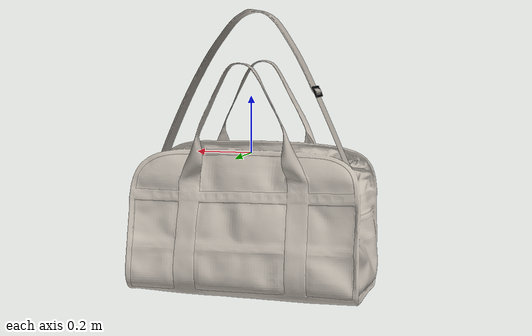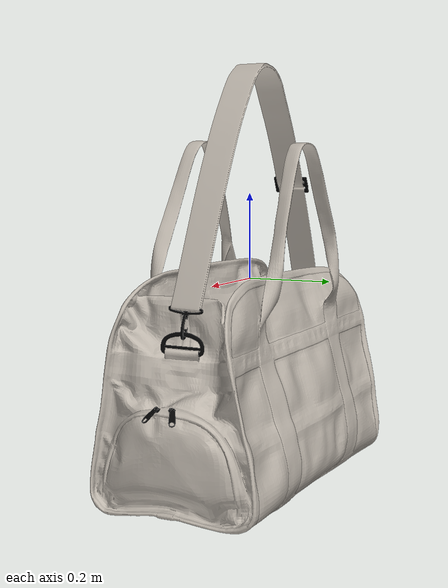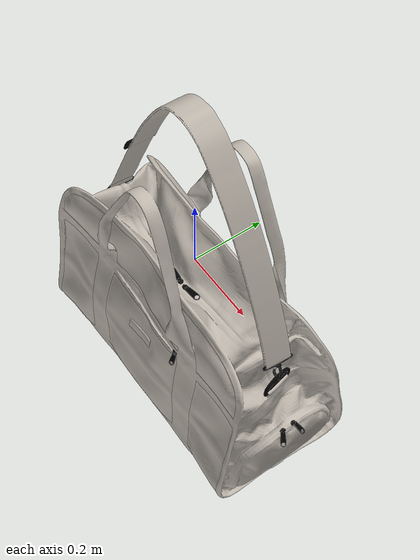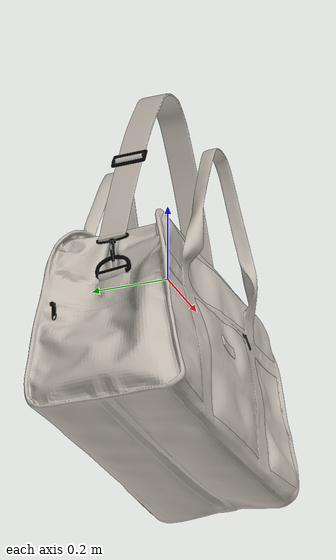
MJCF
<mujoco model="duffel_bag">
  <asset>
  <texture file="visual/ceramic.png" name="tex-duffel_bag" type="2d" />
  <material name="duffel_bag" reflectance="0.5" texrepeat="1 1" texture="tex-duffel_bag" texuniform="false" />
  <mesh file="visual/model_normalized_0.obj" name="model_normalized_0_vis" scale="1.0 1.0 1.0" /><mesh file="visual/model_normalized_1.obj" name="model_normalized_1_vis" scale="1.0 1.0 1.0" /><mesh file="visual/model_normalized_2.obj" name="model_normalized_2_vis" scale="1.0 1.0 1.0" /><mesh file="visual/model_normalized_3.obj" name="model_normalized_3_vis" scale="1.0 1.0 1.0" /><mesh file="visual/model_normalized_4.obj" name="model_normalized_4_vis" scale="1.0 1.0 1.0" /><mesh file="collision/model_normalized_collision_22.obj" name="model_normalized_collision_22._coll" scale="1.0 1.0 1.0" /><mesh file="collision/model_normalized_collision_4.obj" name="model_normalized_collision_4._coll" scale="1.0 1.0 1.0" /><mesh file="collision/model_normalized_collision_27.obj" name="model_normalized_collision_27._coll" scale="1.0 1.0 1.0" /><mesh file="collision/model_normalized_collision_6.obj" name="model_normalized_collision_6._coll" scale="1.0 1.0 1.0" /><mesh file="collision/model_normalized_collision_25.obj" name="model_normalized_collision_25._coll" scale="1.0 1.0 1.0" /><mesh file="collision/model_normalized_collision_26.obj" name="model_normalized_collision_26._coll" scale="1.0 1.0 1.0" /><mesh file="collision/model_normalized_collision_29.obj" name="model_normalized_collision_29._coll" scale="1.0 1.0 1.0" /><mesh file="collision/model_normalized_collision_19.obj" name="model_normalized_collision_19._coll" scale="1.0 1.0 1.0" /><mesh file="collision/model_normalized_collision_12.obj" name="model_normalized_collision_12._coll" scale="1.0 1.0 1.0" /><mesh file="collision/model_normalized_collision_17.obj" name="model_normalized_collision_17._coll" scale="1.0 1.0 1.0" /><mesh file="collision/model_normalized_collision_20.obj" name="model_normalized_collision_20._coll" scale="1.0 1.0 1.0" /><mesh file="collision/model_normalized_collision_14.obj" name="model_normalized_collision_14._coll" scale="1.0 1.0 1.0" /><mesh file="collision/model_normalized_collision_18.obj" name="model_normalized_collision_18._coll" scale="1.0 1.0 1.0" /><mesh file="collision/model_normalized_collision_15.obj" name="model_normalized_collision_15._coll" scale="1.0 1.0 1.0" /><mesh file="collision/model_normalized_collision_30.obj" name="model_normalized_collision_30._coll" scale="1.0 1.0 1.0" /><mesh file="collision/model_normalized_collision_31.obj" name="model_normalized_collision_31._coll" scale="1.0 1.0 1.0" /><mesh file="collision/model_normalized_collision_23.obj" name="model_normalized_collision_23._coll" scale="1.0 1.0 1.0" /><mesh file="collision/model_normalized_collision_28.obj" name="model_normalized_collision_28._coll" scale="1.0 1.0 1.0" /><mesh file="collision/model_normalized_collision_13.obj" name="model_normalized_collision_13._coll" scale="1.0 1.0 1.0" /><mesh file="collision/model_normalized_collision_5.obj" name="model_normalized_collision_5._coll" scale="1.0 1.0 1.0" /><mesh file="collision/model_normalized_collision_24.obj" name="model_normalized_collision_24._coll" scale="1.0 1.0 1.0" /><mesh file="collision/model_normalized_collision_16.obj" name="model_normalized_collision_16._coll" scale="1.0 1.0 1.0" /><mesh file="collision/model_normalized_collision_11.obj" name="model_normalized_collision_11._coll" scale="1.0 1.0 1.0" /><mesh file="collision/model_normalized_collision_1.obj" name="model_normalized_collision_1._coll" scale="1.0 1.0 1.0" /><mesh file="collision/model_normalized_collision_10.obj" name="model_normalized_collision_10._coll" scale="1.0 1.0 1.0" /><mesh file="collision/model_normalized_collision_21.obj" name="model_normalized_collision_21._coll" scale="1.0 1.0 1.0" /><mesh file="collision/model_normalized_collision_8.obj" name="model_normalized_collision_8._coll" scale="1.0 1.0 1.0" /><mesh file="collision/model_normalized_collision_7.obj" name="model_normalized_collision_7._coll" scale="1.0 1.0 1.0" /><mesh file="collision/model_normalized_collision_3.obj" name="model_normalized_collision_3._coll" scale="1.0 1.0 1.0" /><mesh file="collision/model_normalized_collision_2.obj" name="model_normalized_collision_2._coll" scale="1.0 1.0 1.0" /><mesh file="collision/model_normalized_collision_9.obj" name="model_normalized_collision_9._coll" scale="1.0 1.0 1.0" /><mesh file="collision/model_normalized_collision_0.obj" name="model_normalized_collision_0._coll" scale="1.0 1.0 1.0" /><texture type="2d" name="harris_l_gurt" file="visual/harris_l_gurt.png" /><texture type="2d" name="harris_l_color" file="visual/harris_l_color.png" /><texture type="2d" name="harris_l_color_bg" file="visual/harris_l_color_bg.png" /><material name="schnalle" specular="0.4000000000000001" shininess="0.001" rgba="0.00392157 0.00392157 0.00392157 1.0" /><material name="zipper" specular="0.4000000000000001" shininess="0.001" rgba="0.00000000 0.00000000 0.00000000 1.0" /><material name="harris_l_gurt" texture="harris_l_gurt" specular="0.4000000000000001" shininess="0.001" /><material name="harris_l_color" texture="harris_l_color" specular="0.4000000000000001" shininess="0.001" /><material name="harris_l_color_bg" texture="harris_l_color_bg" specular="0.4000000000000001" shininess="0.001" /></asset>
  <worldbody>
    <body>
      <body name="object">
      <geom solimp="0.998 0.998 0.001" solref="0.001 1" density="100" friction="0.95 0.3 0.1" type="mesh" mesh="model_normalized_0_vis" conaffinity="0" contype="0" group="1" material="harris_l_color_bg" /><geom solimp="0.998 0.998 0.001" solref="0.001 1" density="100" friction="0.95 0.3 0.1" type="mesh" mesh="model_normalized_1_vis" conaffinity="0" contype="0" group="1" material="harris_l_color" /><geom solimp="0.998 0.998 0.001" solref="0.001 1" density="100" friction="0.95 0.3 0.1" type="mesh" mesh="model_normalized_2_vis" conaffinity="0" contype="0" group="1" material="harris_l_gurt" /><geom solimp="0.998 0.998 0.001" solref="0.001 1" density="100" friction="0.95 0.3 0.1" type="mesh" mesh="model_normalized_3_vis" conaffinity="0" contype="0" group="1" material="zipper" /><geom solimp="0.998 0.998 0.001" solref="0.001 1" density="100" friction="0.95 0.3 0.1" type="mesh" mesh="model_normalized_4_vis" conaffinity="0" contype="0" group="1" material="schnalle" /><geom solimp="0.998 0.998 0.001" solref="0.001 1" density="100" friction="0.95 0.3 0.1" type="mesh" mesh="model_normalized_collision_22._coll" group="0" rgba="0.8 0.8 0.8 0.0" /><geom solimp="0.998 0.998 0.001" solref="0.001 1" density="100" friction="0.95 0.3 0.1" type="mesh" mesh="model_normalized_collision_4._coll" group="0" rgba="0.8 0.8 0.8 0.0" /><geom solimp="0.998 0.998 0.001" solref="0.001 1" density="100" friction="0.95 0.3 0.1" type="mesh" mesh="model_normalized_collision_27._coll" group="0" rgba="0.8 0.8 0.8 0.0" /><geom solimp="0.998 0.998 0.001" solref="0.001 1" density="100" friction="0.95 0.3 0.1" type="mesh" mesh="model_normalized_collision_6._coll" group="0" rgba="0.8 0.8 0.8 0.0" /><geom solimp="0.998 0.998 0.001" solref="0.001 1" density="100" friction="0.95 0.3 0.1" type="mesh" mesh="model_normalized_collision_25._coll" group="0" rgba="0.8 0.8 0.8 0.0" /><geom solimp="0.998 0.998 0.001" solref="0.001 1" density="100" friction="0.95 0.3 0.1" type="mesh" mesh="model_normalized_collision_26._coll" group="0" rgba="0.8 0.8 0.8 0.0" /><geom solimp="0.998 0.998 0.001" solref="0.001 1" density="100" friction="0.95 0.3 0.1" type="mesh" mesh="model_normalized_collision_29._coll" group="0" rgba="0.8 0.8 0.8 0.0" /><geom solimp="0.998 0.998 0.001" solref="0.001 1" density="100" friction="0.95 0.3 0.1" type="mesh" mesh="model_normalized_collision_19._coll" group="0" rgba="0.8 0.8 0.8 0.0" /><geom solimp="0.998 0.998 0.001" solref="0.001 1" density="100" friction="0.95 0.3 0.1" type="mesh" mesh="model_normalized_collision_12._coll" group="0" rgba="0.8 0.8 0.8 0.0" /><geom solimp="0.998 0.998 0.001" solref="0.001 1" density="100" friction="0.95 0.3 0.1" type="mesh" mesh="model_normalized_collision_17._coll" group="0" rgba="0.8 0.8 0.8 0.0" /><geom solimp="0.998 0.998 0.001" solref="0.001 1" density="100" friction="0.95 0.3 0.1" type="mesh" mesh="model_normalized_collision_20._coll" group="0" rgba="0.8 0.8 0.8 0.0" /><geom solimp="0.998 0.998 0.001" solref="0.001 1" density="100" friction="0.95 0.3 0.1" type="mesh" mesh="model_normalized_collision_14._coll" group="0" rgba="0.8 0.8 0.8 0.0" /><geom solimp="0.998 0.998 0.001" solref="0.001 1" density="100" friction="0.95 0.3 0.1" type="mesh" mesh="model_normalized_collision_18._coll" group="0" rgba="0.8 0.8 0.8 0.0" /><geom solimp="0.998 0.998 0.001" solref="0.001 1" density="100" friction="0.95 0.3 0.1" type="mesh" mesh="model_normalized_collision_15._coll" group="0" rgba="0.8 0.8 0.8 0.0" /><geom solimp="0.998 0.998 0.001" solref="0.001 1" density="100" friction="0.95 0.3 0.1" type="mesh" mesh="model_normalized_collision_30._coll" group="0" rgba="0.8 0.8 0.8 0.0" /><geom solimp="0.998 0.998 0.001" solref="0.001 1" density="100" friction="0.95 0.3 0.1" type="mesh" mesh="model_normalized_collision_31._coll" group="0" rgba="0.8 0.8 0.8 0.0" /><geom solimp="0.998 0.998 0.001" solref="0.001 1" density="100" friction="0.95 0.3 0.1" type="mesh" mesh="model_normalized_collision_23._coll" group="0" rgba="0.8 0.8 0.8 0.0" /><geom solimp="0.998 0.998 0.001" solref="0.001 1" density="100" friction="0.95 0.3 0.1" type="mesh" mesh="model_normalized_collision_28._coll" group="0" rgba="0.8 0.8 0.8 0.0" /><geom solimp="0.998 0.998 0.001" solref="0.001 1" density="100" friction="0.95 0.3 0.1" type="mesh" mesh="model_normalized_collision_13._coll" group="0" rgba="0.8 0.8 0.8 0.0" /><geom solimp="0.998 0.998 0.001" solref="0.001 1" density="100" friction="0.95 0.3 0.1" type="mesh" mesh="model_normalized_collision_5._coll" group="0" rgba="0.8 0.8 0.8 0.0" /><geom solimp="0.998 0.998 0.001" solref="0.001 1" density="100" friction="0.95 0.3 0.1" type="mesh" mesh="model_normalized_collision_24._coll" group="0" rgba="0.8 0.8 0.8 0.0" /><geom solimp="0.998 0.998 0.001" solref="0.001 1" density="100" friction="0.95 0.3 0.1" type="mesh" mesh="model_normalized_collision_16._coll" group="0" rgba="0.8 0.8 0.8 0.0" /><geom solimp="0.998 0.998 0.001" solref="0.001 1" density="100" friction="0.95 0.3 0.1" type="mesh" mesh="model_normalized_collision_11._coll" group="0" rgba="0.8 0.8 0.8 0.0" /><geom solimp="0.998 0.998 0.001" solref="0.001 1" density="100" friction="0.95 0.3 0.1" type="mesh" mesh="model_normalized_collision_1._coll" group="0" rgba="0.8 0.8 0.8 0.0" /><geom solimp="0.998 0.998 0.001" solref="0.001 1" density="100" friction="0.95 0.3 0.1" type="mesh" mesh="model_normalized_collision_10._coll" group="0" rgba="0.8 0.8 0.8 0.0" /><geom solimp="0.998 0.998 0.001" solref="0.001 1" density="100" friction="0.95 0.3 0.1" type="mesh" mesh="model_normalized_collision_21._coll" group="0" rgba="0.8 0.8 0.8 0.0" /><geom solimp="0.998 0.998 0.001" solref="0.001 1" density="100" friction="0.95 0.3 0.1" type="mesh" mesh="model_normalized_collision_8._coll" group="0" rgba="0.8 0.8 0.8 0.0" /><geom solimp="0.998 0.998 0.001" solref="0.001 1" density="100" friction="0.95 0.3 0.1" type="mesh" mesh="model_normalized_collision_7._coll" group="0" rgba="0.8 0.8 0.8 0.0" /><geom solimp="0.998 0.998 0.001" solref="0.001 1" density="100" friction="0.95 0.3 0.1" type="mesh" mesh="model_normalized_collision_3._coll" group="0" rgba="0.8 0.8 0.8 0.0" /><geom solimp="0.998 0.998 0.001" solref="0.001 1" density="100" friction="0.95 0.3 0.1" type="mesh" mesh="model_normalized_collision_2._coll" group="0" rgba="0.8 0.8 0.8 0.0" /><geom solimp="0.998 0.998 0.001" solref="0.001 1" density="100" friction="0.95 0.3 0.1" type="mesh" mesh="model_normalized_collision_9._coll" group="0" rgba="0.8 0.8 0.8 0.0" /><geom solimp="0.998 0.998 0.001" solref="0.001 1" density="100" friction="0.95 0.3 0.1" type="mesh" mesh="model_normalized_collision_0._coll" group="0" rgba="0.8 0.8 0.8 0.0" /></body>
      <site rgba="0 0 0 0" size="0.005" pos="0.0010513262387377709 -0.003688509458905892 -0.5075757575900404" name="bottom_site" />
      <site rgba="0 0 0 0" size="0.005" pos="0.0010513262387377709 -0.003688509458905892 0.5075757575900404" name="top_site" />
      <site rgba="0 0 0 0" size="0.005" pos="0.4480210232243566 0.20843270266815986 -5.551115123125783e-17" name="horizontal_radius_site" />
    </body>
  </worldbody>
</mujoco>
